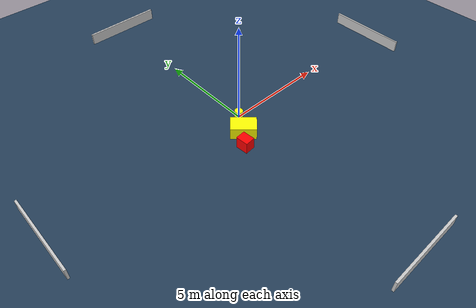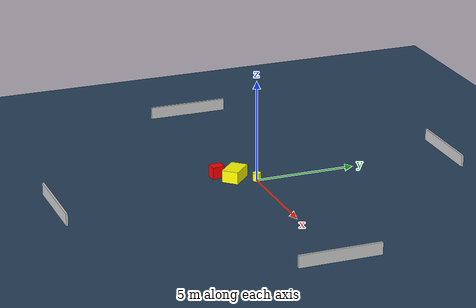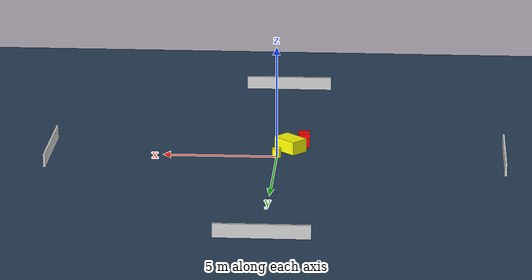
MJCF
<?xml version="1.0" ?>
<mujoco model="generated_environment">
  <option timestep="0.01" integrator="RK4" cone="elliptic"/>
  <default>
    <geom density="1"/>
  </default>
  <asset>
    <texture builtin="gradient" height="3072" name="skybox" rgb1="0.3 0.5 0.7" rgb2="0 0 0" type="skybox" width="512"/>
    <texture builtin="checker" height="300" name="groundplane" rgb1="0.2 0.3 0.4" rgb2="0.1 0.2 0.3" type="2d" width="300"/>
    <material name="groundplane" reflectance="0.2" texrepeat="5 5" texture="groundplane"/>
  </asset>
  <worldbody>
    <light dir="0 0 -1" directional="true" pos="0 0 1.5"/>
    <geom condim="3" friction="0.5 0.005 0.001" material="groundplane" name="floor" pos="0 0 0" size="0 0 0.05" type="plane"/>
    <body name="walls">
      <geom name="wall_1" condim="4" pos="-10.0 0.0 0.3" rgba="0.800000011920929 0.800000011920929 0.800000011920929 1.0" size="0.05 2.0 0.3" type="box"/>
      <geom name="wall_2" condim="4" pos="10.0 0.0 0.3" rgba="0.800000011920929 0.800000011920929 0.800000011920929 1.0" size="0.05 2.0 0.3" type="box"/>
      <geom name="wall_3" condim="4" pos="0.0 -10.0 0.3" rgba="0.800000011920929 0.800000011920929 0.800000011920929 1.0" size="2.0 0.05 0.3" type="box"/>
      <geom name="wall_4" condim="4" pos="0.0 10.0 0.3" rgba="0.800000011920929 0.800000011920929 0.800000011920929 1.0" size="2.0 0.05 0.3" type="box"/>
    </body>
    <body name="robot">
      <joint name="joint_x" type="slide" pos="0 0 0" axis="1 0 0"/>
      <joint name="joint_y" type="slide" pos="0 0 0" axis="0 1 0"/>
      <geom name="robot" type="cylinder" pos="0.0 0.0 0.2" size="0.2 0.2 0.0" mass="5.0" friction="1.0 0.005 0.0001" condim="4" rgba="1.0 1.0 0.0 1.0"/>
    </body>
    <body name="obstacle_1_movable">
      <geom name="obstacle_1_movable" condim="4" pos="-0.5599357261319438 -0.921885632850928 0.3" euler="0 0 226.7258630393174" friction="0.0 0.005 0.001" rgba="1.0 1.0 0.0 1.0" size="0.40777549290176546 0.6104730567898122 0.3" type="box" mass="0.1"/>
      <joint type="free"/>
    </body>
    <body name="obstacle_2_static">
      <geom name="obstacle_2_static" condim="4" pos="-1.1274080953568157 -1.6400793918313332 0.3" euler="0 0 94.9078850591015" friction="0.0 0.005 0.001" rgba="1.0 0.0 0.0 1.0" size="0.3059150897526224 0.2455922397188462 0.3" type="box"/>
    </body>
  </worldbody>
  <actuator>
    <motor name="actuator_x" joint="joint_x" gear="1" ctrlrange="-1 1"/>
    <motor name="actuator_y" joint="joint_y" gear="1" ctrlrange="-1 1"/>
  </actuator>
</mujoco>
